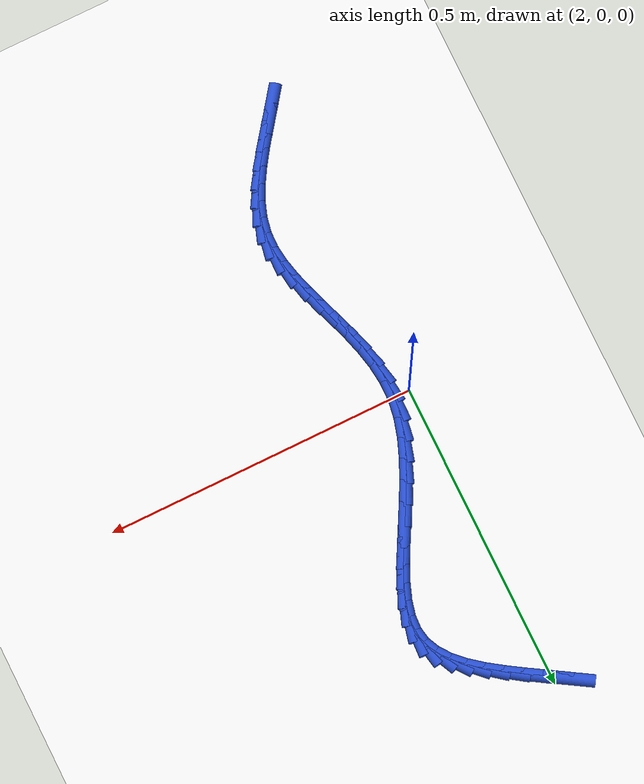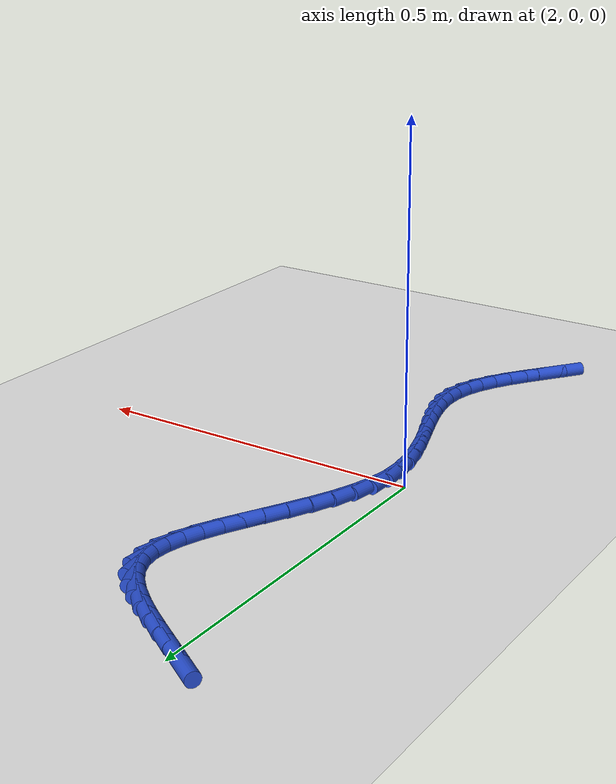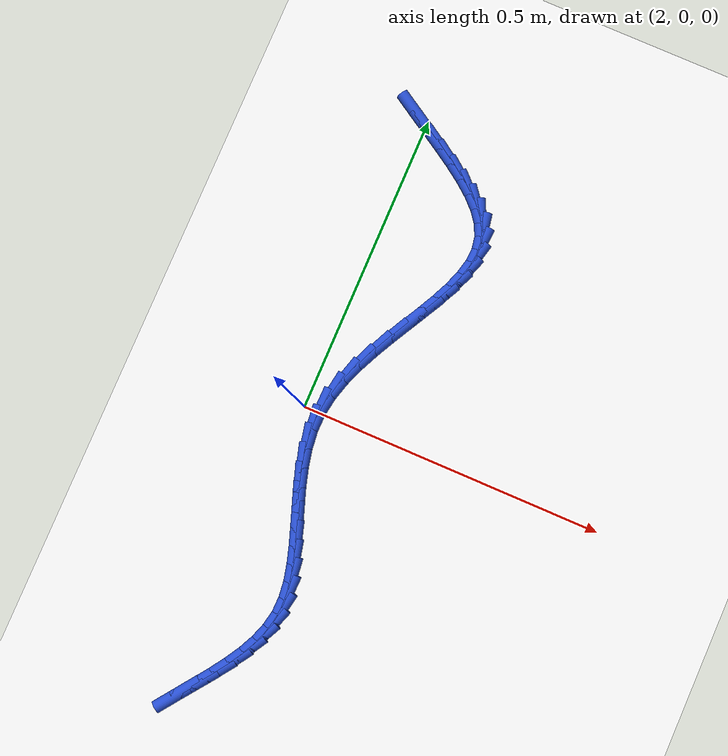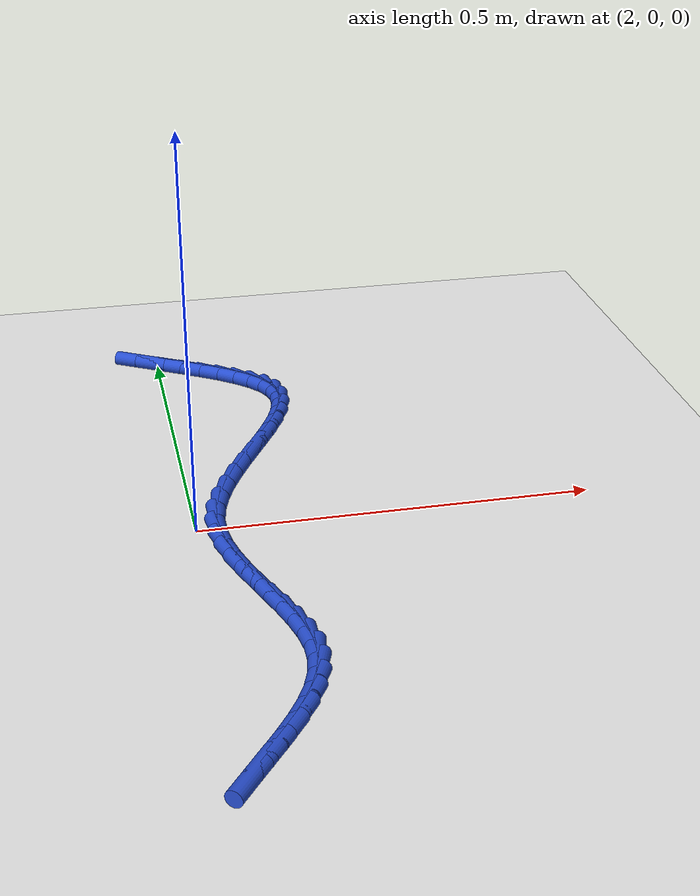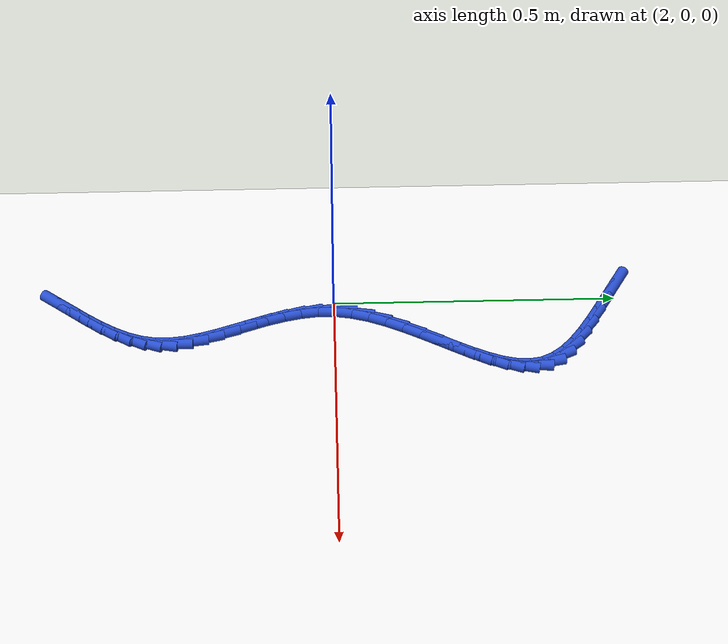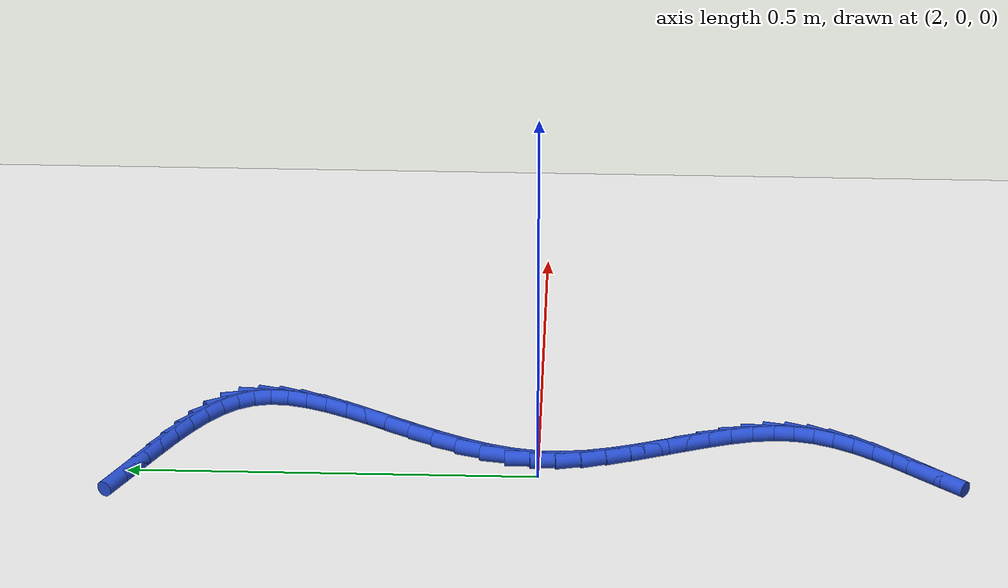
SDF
<sdf version="1.6">
 <world name="default">
  <model name="ground_plane">
   <static>1</static>
   <link name="link">
    <collision name="collision">
     <geometry><plane><normal>0 0 1</normal><size>100 100</size></plane></geometry>
     <surface><friction><ode><mu>100</mu><mu2>50</mu2></ode></friction></surface>
    </collision>
    <visual name="visual">
     <cast_shadows>0</cast_shadows>
     <geometry><plane><normal>0 0 1</normal><size>100 100</size></plane></geometry>
     <material>
      <script><uri>file://media/materials/scripts/gazebo.material</uri><name>Gazebo/WhiteGlow</name></script>
     </material>
    </visual>
   </link>
  </model>
  <model name="line">
   <link name="link_101">
    <pose>1.9776783996241019 0.5020787662723812 0.01 0 1.57 -0.5516073912957625</pose>
    <collision name="collision">
     <geometry><cylinder><radius>0.01</radius><length>0.08</length></cylinder></geometry>
    </collision>
    <visual name="visual">
     <material>
      <script><name>Gazebo/Blue</name><uri>file://media/materials/scripts/gazebo.material</uri></script>
     </material>
     <geometry><cylinder><radius>0.01</radius><length>0.08</length></cylinder></geometry>
    </visual>
   </link>
   <link name="link_102">
    <pose>2.006133625612408 0.4845697249769307 0.01 0 1.57 -0.5496630083513635</pose>
    <collision name="collision">
     <geometry><cylinder><radius>0.01</radius><length>0.08</length></cylinder></geometry>
    </collision>
    <visual name="visual">
     <material>
      <script><name>Gazebo/Blue</name><uri>file://media/materials/scripts/gazebo.material</uri></script>
     </material>
     <geometry><cylinder><radius>0.01</radius><length>0.08</length></cylinder></geometry>
    </visual>
   </link>
   <link name="link_103">
    <pose>2.0341263196307238 0.4674202349239819 0.01 0 1.57 -0.5667777585296453</pose>
    <collision name="collision">
     <geometry><cylinder><radius>0.01</radius><length>0.08</length></cylinder></geometry>
    </collision>
    <visual name="visual">
     <material>
      <script><name>Gazebo/Blue</name><uri>file://media/materials/scripts/gazebo.material</uri></script>
     </material>
     <geometry><cylinder><radius>0.01</radius><length>0.08</length></cylinder></geometry>
    </visual>
   </link>
   <link name="link_104">
    <pose>2.060908206232969 0.4503753896466866 0.01 0 1.57 -0.6058193651733947</pose>
    <collision name="collision">
     <geometry><cylinder><radius>0.01</radius><length>0.08</length></cylinder></geometry>
    </collision>
    <visual name="visual">
     <material>
      <script><name>Gazebo/Blue</name><uri>file://media/materials/scripts/gazebo.material</uri></script>
     </material>
     <geometry><cylinder><radius>0.01</radius><length>0.08</length></cylinder></geometry>
    </visual>
   </link>
   <link name="link_105">
    <pose>2.08573100997306 0.43318028267819714 0.01 0 1.57 -0.6721969630218647</pose>
    <collision name="collision">
     <geometry><cylinder><radius>0.01</radius><length>0.08</length></cylinder></geometry>
    </collision>
    <visual name="visual">
     <material>
      <script><name>Gazebo/Blue</name><uri>file://media/materials/scripts/gazebo.material</uri></script>
     </material>
     <geometry><cylinder><radius>0.01</radius><length>0.08</length></cylinder></geometry>
    </visual>
   </link>
   <link name="link_106">
    <pose>2.1078464554049154 0.4155800075516651 0.01 0 1.57 -0.7745789707340844</pose>
    <collision name="collision">
     <geometry><cylinder><radius>0.01</radius><length>0.08</length></cylinder></geometry>
    </collision>
    <visual name="visual">
     <material>
      <script><name>Gazebo/Blue</name><uri>file://media/materials/scripts/gazebo.material</uri></script>
     </material>
     <geometry><cylinder><radius>0.01</radius><length>0.08</length></cylinder></geometry>
    </visual>
   </link>
   <link name="link_107">
    <pose>2.1265062670824517 0.3973196578002421 0.01 0 1.57 -0.9248165041522218</pose>
    <collision name="collision">
     <geometry><cylinder><radius>0.01</radius><length>0.08</length></cylinder></geometry>
    </collision>
    <visual name="visual">
     <material>
      <script><name>Gazebo/Blue</name><uri>file://media/materials/scripts/gazebo.material</uri></script>
     </material>
     <geometry><cylinder><radius>0.01</radius><length>0.08</length></cylinder></geometry>
    </visual>
   </link>
   <link name="link_108">
    <pose>2.140962169559588 0.37814432695708006 0.01 0 1.57 -1.133794571797152</pose>
    <collision name="collision">
     <geometry><cylinder><radius>0.01</radius><length>0.08</length></cylinder></geometry>
    </collision>
    <visual name="visual">
     <material>
      <script><name>Gazebo/Blue</name><uri>file://media/materials/scripts/gazebo.material</uri></script>
     </material>
     <geometry><cylinder><radius>0.01</radius><length>0.08</length></cylinder></geometry>
    </visual>
   </link>
   <link name="link_109">
    <pose>2.1504658873902414 0.35779910855533115 0.01 0 1.57 -1.3928247815611445</pose>
    <collision name="collision">
     <geometry><cylinder><radius>0.01</radius><length>0.08</length></cylinder></geometry>
    </collision>
    <visual name="visual">
     <material>
      <script><name>Gazebo/Blue</name><uri>file://media/materials/scripts/gazebo.material</uri></script>
     </material>
     <geometry><cylinder><radius>0.01</radius><length>0.08</length></cylinder></geometry>
    </visual>
   </link>
   <link name="link_110">
    <pose>2.154377081864076 0.33605511130342675 0.01 0 1.57 1.5120159847875245</pose>
    <collision name="collision">
     <geometry><cylinder><radius>0.01</radius><length>0.08</length></cylinder></geometry>
    </collision>
    <visual name="visual">
     <material>
      <script><name>Gazebo/Blue</name><uri>file://media/materials/scripts/gazebo.material</uri></script>
     </material>
     <geometry><cylinder><radius>0.01</radius><length>0.08</length></cylinder></geometry>
    </visual>
   </link>
   <link name="link_111">
    <pose>2.153015317863725 0.3129148022147336 0.01 0 1.57 1.337072285899327</pose>
    <collision name="collision">
     <geometry><cylinder><radius>0.01</radius><length>0.08</length></cylinder></geometry>
    </collision>
    <visual name="visual">
     <material>
      <script><name>Gazebo/Blue</name><uri>file://media/materials/scripts/gazebo.material</uri></script>
     </material>
     <geometry><cylinder><radius>0.01</radius><length>0.08</length></cylinder></geometry>
    </visual>
   </link>
   <link name="link_112">
    <pose>2.1472032148328926 0.2885018957397487 0.01 0 1.57 1.2171761604476727</pose>
    <collision name="collision">
     <geometry><cylinder><radius>0.01</radius><length>0.08</length></cylinder></geometry>
    </collision>
    <visual name="visual">
     <material>
      <script><name>Gazebo/Blue</name><uri>file://media/materials/scripts/gazebo.material</uri></script>
     </material>
     <geometry><cylinder><radius>0.01</radius><length>0.08</length></cylinder></geometry>
    </visual>
   </link>
   <link name="link_113">
    <pose>2.137767819799279 0.2629411734760626 0.01 0 1.57 1.1395609698252003</pose>
    <collision name="collision">
     <geometry><cylinder><radius>0.01</radius><length>0.08</length></cylinder></geometry>
    </collision>
    <visual name="visual">
     <material>
      <script><name>Gazebo/Blue</name><uri>file://media/materials/scripts/gazebo.material</uri></script>
     </material>
     <geometry><cylinder><radius>0.01</radius><length>0.08</length></cylinder></geometry>
    </visual>
   </link>
   <link name="link_114">
    <pose>2.1255361797905863 0.2363574170212649 0.01 0 1.57 1.0938527648775247</pose>
    <collision name="collision">
     <geometry><cylinder><radius>0.01</radius><length>0.08</length></cylinder></geometry>
    </collision>
    <visual name="visual">
     <material>
      <script><name>Gazebo/Blue</name><uri>file://media/materials/scripts/gazebo.material</uri></script>
     </material>
     <geometry><cylinder><radius>0.01</radius><length>0.08</length></cylinder></geometry>
    </visual>
   </link>
   <link name="link_115">
    <pose>2.1113353418345144 0.2088754079729452 0.01 0 1.57 1.0733360823914446</pose>
    <collision name="collision">
     <geometry><cylinder><radius>0.01</radius><length>0.08</length></cylinder></geometry>
    </collision>
    <visual name="visual">
     <material>
      <script><name>Gazebo/Blue</name><uri>file://media/materials/scripts/gazebo.material</uri></script>
     </material>
     <geometry><cylinder><radius>0.01</radius><length>0.08</length></cylinder></geometry>
    </visual>
   </link>
   <link name="link_116">
    <pose>2.095992352958767 0.1806199279286942 0.01 0 1.57 1.0743289666065674</pose>
    <collision name="collision">
     <geometry><cylinder><radius>0.01</radius><length>0.08</length></cylinder></geometry>
    </collision>
    <visual name="visual">
     <material>
      <script><name>Gazebo/Blue</name><uri>file://media/materials/scripts/gazebo.material</uri></script>
     </material>
     <geometry><cylinder><radius>0.01</radius><length>0.08</length></cylinder></geometry>
    </visual>
   </link>
   <link name="link_117">
    <pose>2.080334260191043 0.1517157584861015 0.01 0 1.57 1.0954709363281254</pose>
    <collision name="collision">
     <geometry><cylinder><radius>0.01</radius><length>0.08</length></cylinder></geometry>
    </collision>
    <visual name="visual">
     <material>
      <script><name>Gazebo/Blue</name><uri>file://media/materials/scripts/gazebo.material</uri></script>
     </material>
     <geometry><cylinder><radius>0.01</radius><length>0.08</length></cylinder></geometry>
    </visual>
   </link>
   <link name="link_118">
    <pose>2.0651881105590446 0.12228768124275706 0.01 0 1.57 1.137262635340828</pose>
    <collision name="collision">
     <geometry><cylinder><radius>0.01</radius><length>0.08</length></cylinder></geometry>
    </collision>
    <visual name="visual">
     <material>
      <script><name>Gazebo/Blue</name><uri>file://media/materials/scripts/gazebo.material</uri></script>
     </material>
     <geometry><cylinder><radius>0.01</radius><length>0.08</length></cylinder></geometry>
    </visual>
   </link>
   <link name="link_119">
    <pose>2.051380951090473 0.09246047779625041 0.01 0 1.57 1.201783113498387</pose>
    <collision name="collision">
     <geometry><cylinder><radius>0.01</radius><length>0.08</length></cylinder></geometry>
    </collision>
    <visual name="visual">
     <material>
      <script><name>Gazebo/Blue</name><uri>file://media/materials/scripts/gazebo.material</uri></script>
     </material>
     <geometry><cylinder><radius>0.01</radius><length>0.08</length></cylinder></geometry>
    </visual>
   </link>
   <link name="link_120">
    <pose>2.0397398288130293 0.06235892974417229 0.01 0 1.57 1.2923480377213328</pose>
    <collision name="collision">
     <geometry><cylinder><radius>0.01</radius><length>0.08</length></cylinder></geometry>
    </collision>
    <visual name="visual">
     <material>
      <script><name>Gazebo/Blue</name><uri>file://media/materials/scripts/gazebo.material</uri></script>
     </material>
     <geometry><cylinder><radius>0.01</radius><length>0.08</length></cylinder></geometry>
    </visual>
   </link>
   <link name="link_121">
    <pose>2.031091790754415 0.03210781868411228 0.01 0 1.57 1.412663990231116</pose>
    <collision name="collision">
     <geometry><cylinder><radius>0.01</radius><length>0.08</length></cylinder></geometry>
    </collision>
    <visual name="visual">
     <material>
      <script><name>Gazebo/Blue</name><uri>file://media/materials/scripts/gazebo.material</uri></script>
     </material>
     <geometry><cylinder><radius>0.01</radius><length>0.08</length></cylinder></geometry>
    </visual>
   </link>
   <link name="link_122">
    <pose>2.026263883942331 0.0018319262136603093 0.01 0 1.57 1.5565875524114932</pose>
    <collision name="collision">
     <geometry><cylinder><radius>0.01</radius><length>0.08</length></cylinder></geometry>
    </collision>
    <visual name="visual">
     <material>
      <script><name>Gazebo/Blue</name><uri>file://media/materials/scripts/gazebo.material</uri></script>
     </material>
     <geometry><cylinder><radius>0.01</radius><length>0.08</length></cylinder></geometry>
    </visual>
   </link>
   <link name="link_123">
    <pose>2.025834950785543 -0.02835394901801322 0.01 0 1.57 -1.4571570361159907</pose>
    <collision name="collision">
     <geometry><cylinder><radius>0.01</radius><length>0.08</length></cylinder></geometry>
    </collision>
    <visual name="visual">
     <material>
      <script><name>Gazebo/Blue</name><uri>file://media/materials/scripts/gazebo.material</uri></script>
     </material>
     <geometry><cylinder><radius>0.01</radius><length>0.08</length></cylinder></geometry>
    </visual>
   </link>
   <link name="link_124">
    <pose>2.0292618695340296 -0.05838013447733474 0.01 0 1.57 -1.3585802236031501</pose>
    <collision name="collision">
     <geometry><cylinder><radius>0.01</radius><length>0.08</length></cylinder></geometry>
    </collision>
    <visual name="visual">
     <material>
      <script><name>Gazebo/Blue</name><uri>file://media/materials/scripts/gazebo.material</uri></script>
     </material>
     <geometry><cylinder><radius>0.01</radius><length>0.08</length></cylinder></geometry>
    </visual>
   </link>
   <link name="link_125">
    <pose>2.0356846486567606 -0.08818970233585867 0.01 0 1.57 -1.288751839544415</pose>
    <collision name="collision">
     <geometry><cylinder><radius>0.01</radius><length>0.08</length></cylinder></geometry>
    </collision>
    <visual name="visual">
     <material>
      <script><name>Gazebo/Blue</name><uri>file://media/materials/scripts/gazebo.material</uri></script>
     </material>
     <geometry><cylinder><radius>0.01</radius><length>0.08</length></cylinder></geometry>
    </visual>
   </link>
   <link name="link_126">
    <pose>2.0442432776329764 -0.11772572552891612 0.01 0 1.57 -1.2459893423832824</pose>
    <collision name="collision">
     <geometry><cylinder><radius>0.01</radius><length>0.08</length></cylinder></geometry>
    </collision>
    <visual name="visual">
     <material>
      <script><name>Gazebo/Blue</name><uri>file://media/materials/scripts/gazebo.material</uri></script>
     </material>
     <geometry><cylinder><radius>0.01</radius><length>0.08</length></cylinder></geometry>
    </visual>
   </link>
   <link name="link_127">
    <pose>2.0540777459419175 -0.14693127699184047 0.01 0 1.57 -1.2290624591001136</pose>
    <collision name="collision">
     <geometry><cylinder><radius>0.01</radius><length>0.08</length></cylinder></geometry>
    </collision>
    <visual name="visual">
     <material>
      <script><name>Gazebo/Blue</name><uri>file://media/materials/scripts/gazebo.material</uri></script>
     </material>
     <geometry><cylinder><radius>0.01</radius><length>0.08</length></cylinder></geometry>
    </visual>
   </link>
   <link name="link_128">
    <pose>2.064328043062824 -0.17574942965996443 0.01 0 1.57 -1.238042888915521</pose>
    <collision name="collision">
     <geometry><cylinder><radius>0.01</radius><length>0.08</length></cylinder></geometry>
    </collision>
    <visual name="visual">
     <material>
      <script><name>Gazebo/Blue</name><uri>file://media/materials/scripts/gazebo.material</uri></script>
     </material>
     <geometry><cylinder><radius>0.01</radius><length>0.08</length></cylinder></geometry>
    </visual>
   </link>
   <link name="link_129">
    <pose>2.074134158474937 -0.20412325646862062 0.01 0 1.57 -1.2747328422824256</pose>
    <collision name="collision">
     <geometry><cylinder><radius>0.01</radius><length>0.08</length></cylinder></geometry>
    </collision>
    <visual name="visual">
     <material>
      <script><name>Gazebo/Blue</name><uri>file://media/materials/scripts/gazebo.material</uri></script>
     </material>
     <geometry><cylinder><radius>0.01</radius><length>0.08</length></cylinder></geometry>
    </visual>
   </link>
   <link name="link_130">
    <pose>2.0826360816574967 -0.23199583035314164 0.01 0 1.57 -1.3428021208633203</pose>
    <collision name="collision">
     <geometry><cylinder><radius>0.01</radius><length>0.08</length></cylinder></geometry>
    </collision>
    <visual name="visual">
     <material>
      <script><name>Gazebo/Blue</name><uri>file://media/materials/scripts/gazebo.material</uri></script>
     </material>
     <geometry><cylinder><radius>0.01</radius><length>0.08</length></cylinder></geometry>
    </visual>
   </link>
   <link name="link_131">
    <pose>2.0889738020897437 -0.25931022424886024 0.01 0 1.57 -1.4473229487766002</pose>
    <collision name="collision">
     <geometry><cylinder><radius>0.01</radius><length>0.08</length></cylinder></geometry>
    </collision>
    <visual name="visual">
     <material>
      <script><name>Gazebo/Blue</name><uri>file://media/materials/scripts/gazebo.material</uri></script>
     </material>
     <geometry><cylinder><radius>0.01</radius><length>0.08</length></cylinder></geometry>
    </visual>
   </link>
   <link name="link_132">
    <pose>2.0922873092509184 -0.28600951109110967 0.01 0 1.57 1.548930785760204</pose>
    <collision name="collision">
     <geometry><cylinder><radius>0.01</radius><length>0.08</length></cylinder></geometry>
    </collision>
    <visual name="visual">
     <material>
      <script><name>Gazebo/Blue</name><uri>file://media/materials/scripts/gazebo.material</uri></script>
     </material>
     <geometry><cylinder><radius>0.01</radius><length>0.08</length></cylinder></geometry>
    </visual>
   </link>
   <link name="link_133">
    <pose>2.091718113664573 -0.3120369883618591 0.01 0 1.57 1.3797296908291725</pose>
    <collision name="collision">
     <geometry><cylinder><radius>0.01</radius><length>0.08</length></cylinder></geometry>
    </collision>
    <visual name="visual">
     <material>
      <script><name>Gazebo/Blue</name><uri>file://media/materials/scripts/gazebo.material</uri></script>
     </material>
     <geometry><cylinder><radius>0.01</radius><length>0.08</length></cylinder></geometry>
    </visual>
   </link>
   <link name="link_134">
    <pose>2.086813057970458 -0.3373957913553128 0.01 0 1.57 1.232203331616735</pose>
    <collision name="collision">
     <geometry><cylinder><radius>0.01</radius><length>0.08</length></cylinder></geometry>
    </collision>
    <visual name="visual">
     <material>
      <script><name>Gazebo/Blue</name><uri>file://media/materials/scripts/gazebo.material</uri></script>
     </material>
     <geometry><cylinder><radius>0.01</radius><length>0.08</length></cylinder></geometry>
    </visual>
   </link>
   <link name="link_135">
    <pose>2.078067880792949 -0.3622291376771612 0.01 0 1.57 1.1163967884647503</pose>
    <collision name="collision">
     <geometry><cylinder><radius>0.01</radius><length>0.08</length></cylinder></geometry>
    </collision>
    <visual name="visual">
     <material>
      <script><name>Gazebo/Blue</name><uri>file://media/materials/scripts/gazebo.material</uri></script>
     </material>
     <geometry><cylinder><radius>0.01</radius><length>0.08</length></cylinder></geometry>
    </visual>
   </link>
   <link name="link_136">
    <pose>2.066113912941103 -0.3867002619496668 0.01 0 1.57 1.0313423742957604</pose>
    <collision name="collision">
     <geometry><cylinder><radius>0.01</radius><length>0.08</length></cylinder></geometry>
    </collision>
    <visual name="visual">
     <material>
      <script><name>Gazebo/Blue</name><uri>file://media/materials/scripts/gazebo.material</uri></script>
     </material>
     <geometry><cylinder><radius>0.01</radius><length>0.08</length></cylinder></geometry>
    </visual>
   </link>
   <link name="link_137">
    <pose>2.051582485223975 -0.4109723987950921 0.01 0 1.57 0.9737095184026258</pose>
    <collision name="collision">
     <geometry><cylinder><radius>0.01</radius><length>0.08</length></cylinder></geometry>
    </collision>
    <visual name="visual">
     <material>
      <script><name>Gazebo/Blue</name><uri>file://media/materials/scripts/gazebo.material</uri></script>
     </material>
     <geometry><cylinder><radius>0.01</radius><length>0.08</length></cylinder></geometry>
    </visual>
   </link>
   <link name="link_138">
    <pose>2.035104928450622 -0.43520878283569986 0.01 0 1.57 0.9400383143675316</pose>
    <collision name="collision">
     <geometry><cylinder><radius>0.01</radius><length>0.08</length></cylinder></geometry>
    </collision>
    <visual name="visual">
     <material>
      <script><name>Gazebo/Blue</name><uri>file://media/materials/scripts/gazebo.material</uri></script>
     </material>
     <geometry><cylinder><radius>0.01</radius><length>0.08</length></cylinder></geometry>
    </visual>
   </link>
   <link name="link_139">
    <pose>2.0173125734300994 -0.4595726486937523 0.01 0 1.57 0.9276876795746216</pose>
    <collision name="collision">
     <geometry><cylinder><radius>0.01</radius><length>0.08</length></cylinder></geometry>
    </collision>
    <visual name="visual">
     <material>
      <script><name>Gazebo/Blue</name><uri>file://media/materials/scripts/gazebo.material</uri></script>
     </material>
     <geometry><cylinder><radius>0.01</radius><length>0.08</length></cylinder></geometry>
    </visual>
   </link>
   <link name="link_140">
    <pose>1.998836750971464 -0.48422723099151294 0.01 0 1.57 0.9350746995952076</pose>
    <collision name="collision">
     <geometry><cylinder><radius>0.01</radius><length>0.08</length></cylinder></geometry>
    </collision>
    <visual name="visual">
     <material>
      <script><name>Gazebo/Blue</name><uri>file://media/materials/scripts/gazebo.material</uri></script>
     </material>
     <geometry><cylinder><radius>0.01</radius><length>0.08</length></cylinder></geometry>
    </visual>
   </link>
  </model>
 </world>
</sdf>
